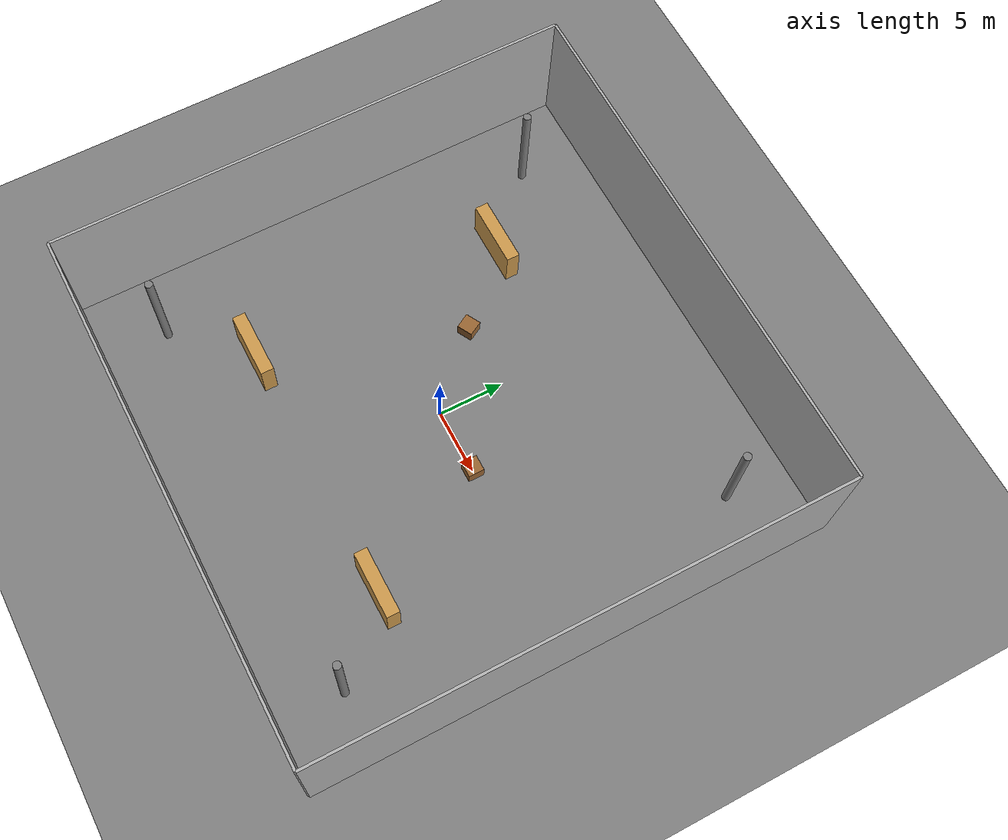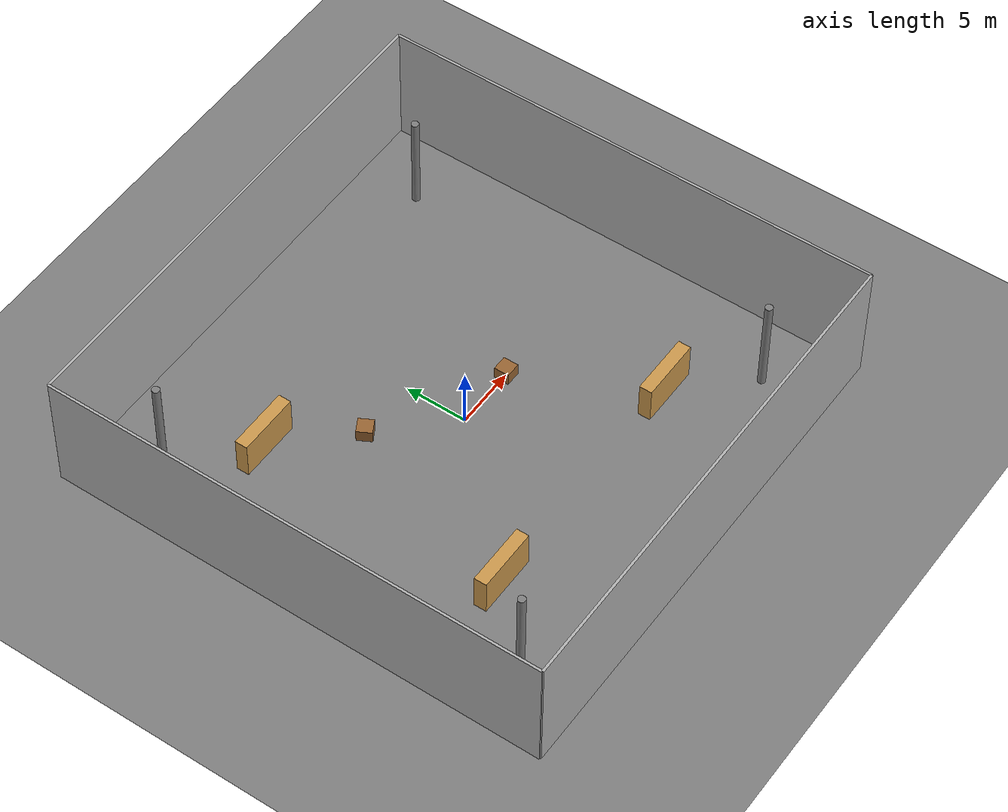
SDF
<?xml version="1.0" ?>
<!--
  Simple Warehouse World for Jetson Orin
  Optimized for performance with essential features only
-->
<sdf version="1.9">
  <world name="simple_warehouse">

    <!-- Physics settings optimized for Jetson Orin -->
    <physics name="1ms" type="ignored">
      <max_step_size>0.003</max_step_size>
      <real_time_factor>1.0</real_time_factor>
    </physics>

     <!-- Plugins -->
    <plugin
      filename="libignition-gazebo-physics-system"
      name="ignition::gazebo::systems::Physics">
    </plugin>
    <plugin
      filename="libignition-gazebo-sensors-system"
      name="ignition::gazebo::systems::Sensors">
      <render_engine>ogre2</render_engine>
    </plugin>
    <plugin
      filename="libignition-gazebo-user-commands-system"
      name="ignition::gazebo::systems::UserCommands">
    </plugin>
    <plugin
      filename="libignition-gazebo-scene-broadcaster-system"
      name="ignition::gazebo::systems::SceneBroadcaster">
    </plugin>
    <plugin filename="libignition-gazebo-imu-system.so"
      name="ignition::gazebo::systems::Imu">
    </plugin>
    <plugin
      filename="libignition-gazebo-navsat-system"
      name="ignition::gazebo::systems::NavSat">
    </plugin>

    <!-- Lighting -->
    <light type="directional" name="sun">
      <cast_shadows>true</cast_shadows>
      <pose>0 0 10 0 0 0</pose>
      <diffuse>0.8 0.8 0.8 1</diffuse>
      <specular>0.2 0.2 0.2 1</specular>
      <attenuation>
        <range>1000</range>
        <constant>0.9</constant>
        <linear>0.01</linear>
        <quadratic>0.001</quadratic>
      </attenuation>
      <direction>-0.5 0.1 -0.9</direction>
    </light>

    <!-- Ground Plane -->
    <model name="ground_plane">
      <static>true</static>
      <link name="link">
        <collision name="collision">
          <geometry>
            <plane>
              <normal>0 0 1</normal>
              <size>100 100</size>
            </plane>
          </geometry>
        </collision>
        <visual name="visual">
          <geometry>
            <plane>
              <normal>0 0 1</normal>
              <size>100 100</size>
            </plane>
          </geometry>
          <material>
            <ambient>0.5 0.5 0.5 1</ambient>
            <diffuse>0.5 0.5 0.5 1</diffuse>
            <specular>0.1 0.1 0.1 1</specular>
          </material>
        </visual>
      </link>
    </model>

    <!-- Warehouse Building Shell -->
    <!-- Back Wall -->
    <model name="wall_back">
      <static>true</static>
      <pose>0 -20 5 0 0 0</pose>
      <link name="link">
        <collision name="collision">
          <geometry>
            <box>
              <size>40 0.2 10</size>
            </box>
          </geometry>
        </collision>
        <visual name="visual">
          <geometry>
            <box>
              <size>40 0.2 10</size>
            </box>
          </geometry>
          <material>
            <ambient>0.7 0.7 0.7 1</ambient>
            <diffuse>0.7 0.7 0.7 1</diffuse>
          </material>
        </visual>
      </link>
    </model>

    <!-- Front Wall -->
    <model name="wall_front">
      <static>true</static>
      <pose>0 20 5 0 0 0</pose>
      <link name="link">
        <collision name="collision">
          <geometry>
            <box>
              <size>40 0.2 10</size>
            </box>
          </geometry>
        </collision>
        <visual name="visual">
          <geometry>
            <box>
              <size>40 0.2 10</size>
            </box>
          </geometry>
          <material>
            <ambient>0.7 0.7 0.7 1</ambient>
            <diffuse>0.7 0.7 0.7 1</diffuse>
          </material>
        </visual>
      </link>
    </model>

    <!-- Left Wall -->
    <model name="wall_left">
      <static>true</static>
      <pose>-20 0 5 0 0 0</pose>
      <link name="link">
        <collision name="collision">
          <geometry>
            <box>
              <size>0.2 40 10</size>
            </box>
          </geometry>
        </collision>
        <visual name="visual">
          <geometry>
            <box>
              <size>0.2 40 10</size>
            </box>
          </geometry>
          <material>
            <ambient>0.7 0.7 0.7 1</ambient>
            <diffuse>0.7 0.7 0.7 1</diffuse>
          </material>
        </visual>
      </link>
    </model>

    <!-- Right Wall -->
    <model name="wall_right">
      <static>true</static>
      <pose>20 0 5 0 0 0</pose>
      <link name="link">
        <collision name="collision">
          <geometry>
            <box>
              <size>0.2 40 10</size>
            </box>
          </geometry>
        </collision>
        <visual name="visual">
          <geometry>
            <box>
              <size>0.2 40 10</size>
            </box>
          </geometry>
          <material>
            <ambient>0.7 0.7 0.7 1</ambient>
            <diffuse>0.7 0.7 0.7 1</diffuse>
          </material>
        </visual>
      </link>
    </model>

    <!-- Storage Racks/Shelves -->
    <!-- Rack 1 -->
    <model name="rack_1">
      <static>true</static>
      <pose>-10 -10 1.5 0 0 0</pose>
      <link name="link">
        <collision name="collision">
          <geometry>
            <box>
              <size>5 1 3</size>
            </box>
          </geometry>
        </collision>
        <visual name="visual">
          <geometry>
            <box>
              <size>5 1 3</size>
            </box>
          </geometry>
          <material>
            <ambient>0.8 0.6 0.3 1</ambient>
            <diffuse>0.8 0.6 0.3 1</diffuse>
          </material>
        </visual>
      </link>
    </model>

    <!-- Rack 2 -->
    <model name="rack_2">
      <static>true</static>
      <pose>10 -10 1.5 0 0 0</pose>
      <link name="link">
        <collision name="collision">
          <geometry>
            <box>
              <size>5 1 3</size>
            </box>
          </geometry>
        </collision>
        <visual name="visual">
          <geometry>
            <box>
              <size>5 1 3</size>
            </box>
          </geometry>
          <material>
            <ambient>0.8 0.6 0.3 1</ambient>
            <diffuse>0.8 0.6 0.3 1</diffuse>
          </material>
        </visual>
      </link>
    </model>

    <!-- Rack 3 -->
    <model name="rack_3">
      <static>true</static>
      <pose>-10 10 1.5 0 0 0</pose>
      <link name="link">
        <collision name="collision">
          <geometry>
            <box>
              <size>5 1 3</size>
            </box>
          </geometry>
        </collision>
        <visual name="visual">
          <geometry>
            <box>
              <size>5 1 3</size>
            </box>
          </geometry>
          <material>
            <ambient>0.8 0.6 0.3 1</ambient>
            <diffuse>0.8 0.6 0.3 1</diffuse>
          </material>
        </visual>
      </link>
    </model>

    <!-- Pallets/Boxes (obstacles) -->
    <model name="pallet_1">
      <static>true</static>
      <pose>5 0 0.5 0 0 0</pose>
      <link name="link">
        <collision name="collision">
          <geometry>
            <box>
              <size>1.2 1.2 1</size>
            </box>
          </geometry>
        </collision>
        <visual name="visual">
          <geometry>
            <box>
              <size>1.2 1.2 1</size>
            </box>
          </geometry>
          <material>
            <ambient>0.6 0.4 0.2 1</ambient>
            <diffuse>0.6 0.4 0.2 1</diffuse>
          </material>
        </visual>
      </link>
    </model>

    <model name="pallet_2">
      <static>true</static>
      <pose>-5 5 0.5 0 0 0.5</pose>
      <link name="link">
        <collision name="collision">
          <geometry>
            <box>
              <size>1.2 1.2 1</size>
            </box>
          </geometry>
        </collision>
        <visual name="visual">
          <geometry>
            <box>
              <size>1.2 1.2 1</size>
            </box>
          </geometry>
          <material>
            <ambient>0.6 0.4 0.2 1</ambient>
            <diffuse>0.6 0.4 0.2 1</diffuse>
          </material>
        </visual>
      </link>
    </model>

    <!-- Industrial Columns -->
    <model name="column_1">
      <static>true</static>
      <pose>-15 -15 4 0 0 0</pose>
      <link name="link">
        <collision name="collision">
          <geometry>
            <cylinder>
              <radius>0.3</radius>
              <length>8</length>
            </cylinder>
          </geometry>
        </collision>
        <visual name="visual">
          <geometry>
            <cylinder>
              <radius>0.3</radius>
              <length>8</length>
            </cylinder>
          </geometry>
          <material>
            <ambient>0.5 0.5 0.5 1</ambient>
            <diffuse>0.5 0.5 0.5 1</diffuse>
          </material>
        </visual>
      </link>
    </model>

    <model name="column_2">
      <static>true</static>
      <pose>15 -15 4 0 0 0</pose>
      <link name="link">
        <collision name="collision">
          <geometry>
            <cylinder>
              <radius>0.3</radius>
              <length>8</length>
            </cylinder>
          </geometry>
        </collision>
        <visual name="visual">
          <geometry>
            <cylinder>
              <radius>0.3</radius>
              <length>8</length>
            </cylinder>
          </geometry>
          <material>
            <ambient>0.5 0.5 0.5 1</ambient>
            <diffuse>0.5 0.5 0.5 1</diffuse>
          </material>
        </visual>
      </link>
    </model>

    <model name="column_3">
      <static>true</static>
      <pose>-15 15 4 0 0 0</pose>
      <link name="link">
        <collision name="collision">
          <geometry>
            <cylinder>
              <radius>0.3</radius>
              <length>8</length>
            </cylinder>
          </geometry>
        </collision>
        <visual name="visual">
          <geometry>
            <cylinder>
              <radius>0.3</radius>
              <length>8</length>
            </cylinder>
          </geometry>
          <material>
            <ambient>0.5 0.5 0.5 1</ambient>
            <diffuse>0.5 0.5 0.5 1</diffuse>
          </material>
        </visual>
      </link>
    </model>

    <model name="column_4">
      <static>true</static>
      <pose>15 15 4 0 0 0</pose>
      <link name="link">
        <collision name="collision">
          <geometry>
            <cylinder>
              <radius>0.3</radius>
              <length>8</length>
            </cylinder>
          </geometry>
        </collision>
        <visual name="visual">
          <geometry>
            <cylinder>
              <radius>0.3</radius>
              <length>8</length>
            </cylinder>
          </geometry>
          <material>
            <ambient>0.5 0.5 0.5 1</ambient>
            <diffuse>0.5 0.5 0.5 1</diffuse>
          </material>
        </visual>
      </link>
    </model>

  </world>
</sdf>
